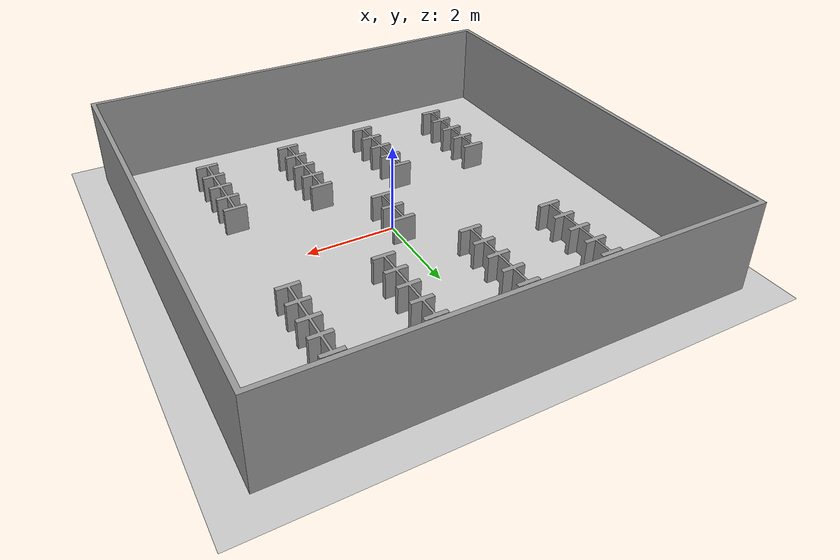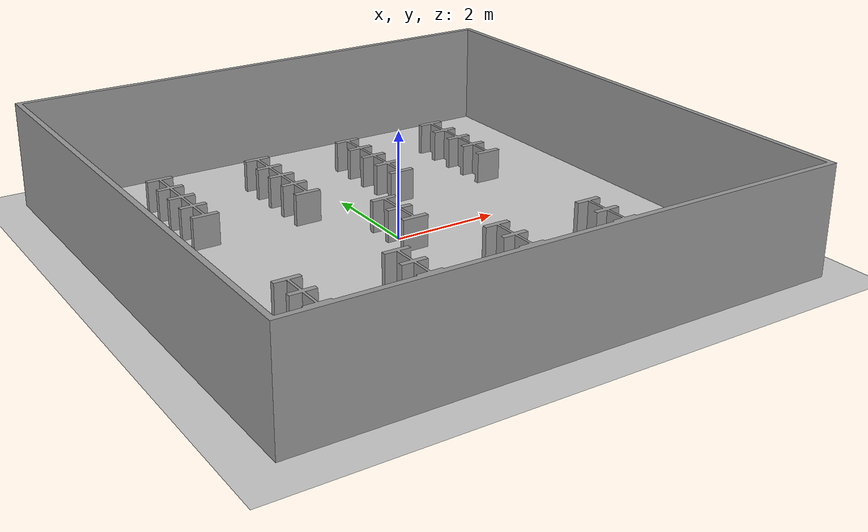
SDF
<sdf version="1.6">
 <world name="default">
  <light name="sun" type="directional">
   <pose>0 0 100 0 -0 0</pose>
   <diffuse>0.8 0.8 0.8 1</diffuse>
   <specular>0.1 0.1 0.1 1</specular>
   <attenuation>
    <range>1000</range>
    <constant>0.9</constant>
    <linear>0.01</linear>
    <quadratic>0.001</quadratic>
   </attenuation>
   <direction>-0.5 0.5 -1</direction>
  </light>
  <model name="ground_plane">
   <static>1</static>
   <link name="link">
    <collision name="collision">
     <geometry><plane><normal>0 0 1</normal><size>100 100</size></plane></geometry>
     <surface><friction><ode><mu>100</mu><mu2>50</mu2></ode></friction></surface>
    </collision>
    <visual name="visual">
     <cast_shadows>0</cast_shadows>
     <geometry><plane><normal>0 0 1</normal><size>100 100</size></plane></geometry>
     <material>
      <script><uri>file://media/materials/scripts/gazebo.material</uri><name>Gazebo/Grey</name></script>
     </material>
    </visual>
    <velocity_decay><linear>0</linear><angular>0</angular></velocity_decay>
   </link>
  </model>
  <model name="floor_plan_simple">
   <static>1</static>
   <link name="link">
    <collision name="collision">
     <geometry>
      <mesh>
       <scale>1 1 1</scale>
       <uri>model://larics_gazebo_worlds/models/greenhouse_layout_simple/model.dae</uri>
      </mesh>
     </geometry>
    </collision>
    <visual name="visual">
     <cast_shadows>0</cast_shadows>
     <geometry>
      <mesh>
       <scale>1 1 1</scale>
       <uri>model://larics_gazebo_worlds/models/greenhouse_layout_simple/model.dae</uri>
      </mesh>
     </geometry>
     <material>
      <script><uri>file://media/materials/scripts/gazebo.material</uri><name>Gazebo/Grey</name></script>
     </material>
    </visual>
   </link>
  </model>
  <gravity>0 0 -9.8</gravity>
  <magnetic_field>6e-06 2.3e-05 -4.2e-05</magnetic_field>
  <atmosphere type="adiabatic"/>
  <physics name="default_physics" default="0" type="ode">
   <max_step_size>0.001</max_step_size>
   <real_time_factor>1</real_time_factor>
   <real_time_update_rate>1000</real_time_update_rate>
  </physics>
  <scene><ambient>0.4 0.4 0.4 1</ambient><background>0.7 0.7 0.7 1</background><shadows>1</shadows></scene>
  <spherical_coordinates>
   <surface_model>EARTH_WGS84</surface_model>
   <latitude_deg>0</latitude_deg>
   <longitude_deg>0</longitude_deg>
   <elevation>0</elevation>
   <heading_deg>0</heading_deg>
  </spherical_coordinates>
 </world>
</sdf>
